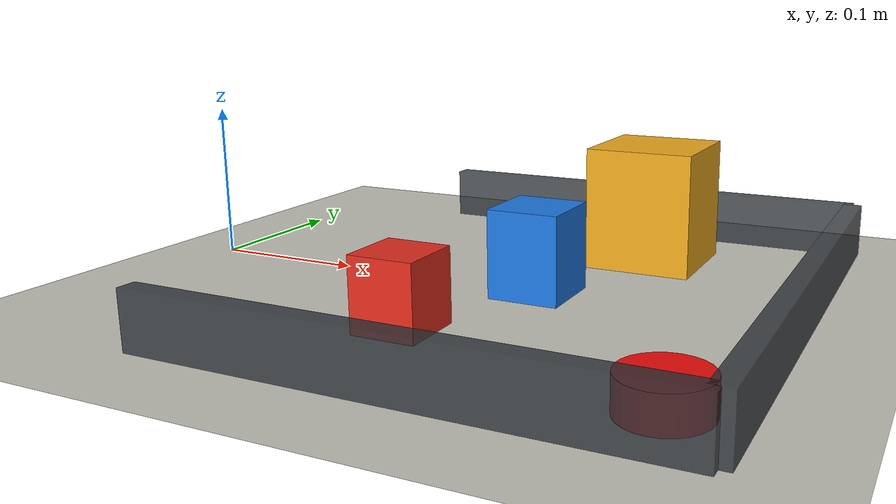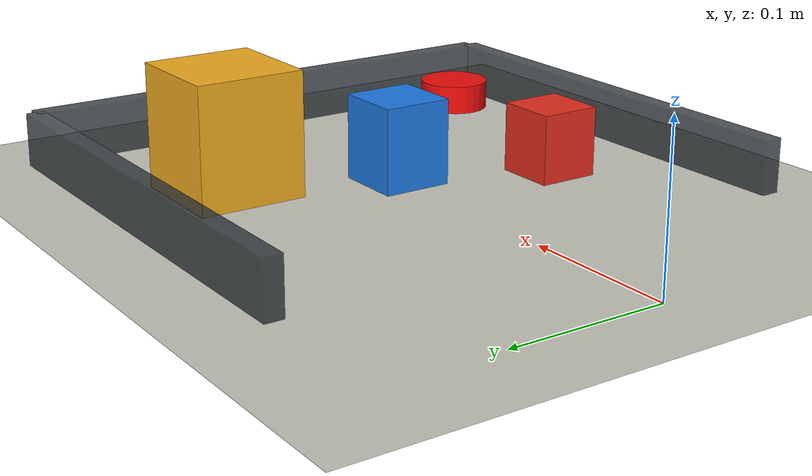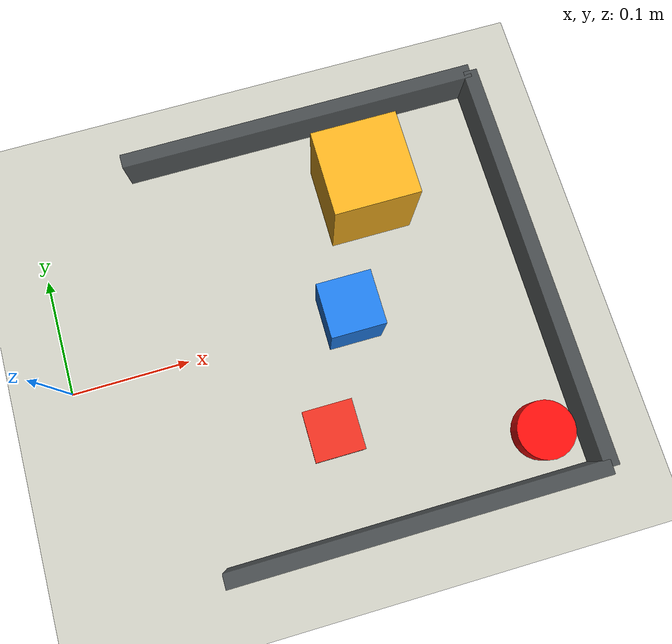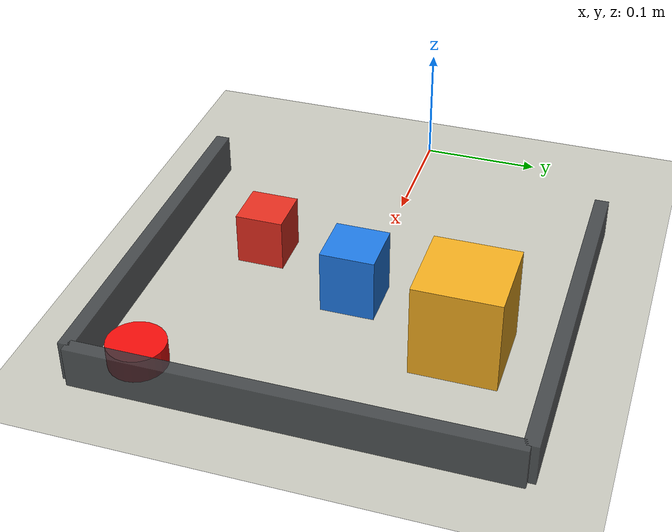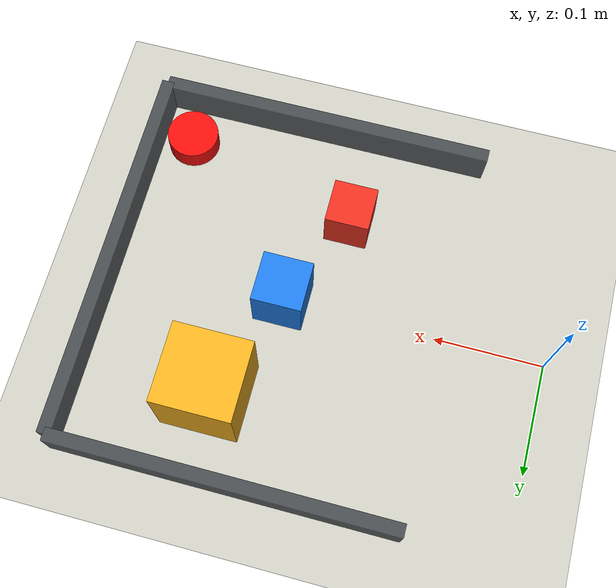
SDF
<?xml version="1.0" ?>
<sdf version="1.10">
  <world name="omx_grasp_lab">
    <physics name="1ms" type="ignored">
      <max_step_size>0.002</max_step_size>
      <real_time_factor>1.0</real_time_factor>
    </physics>

    <plugin filename="gz-sim-physics-system" name="gz::sim::systems::Physics"/>
    <plugin filename="gz-sim-user-commands-system" name="gz::sim::systems::UserCommands"/>
    <plugin filename="gz-sim-scene-broadcaster-system" name="gz::sim::systems::SceneBroadcaster"/>
    <plugin filename="gz-sim-contact-system" name="gz::sim::systems::Contact"/>

    <scene>
      <ambient>0.46 0.46 0.46 1</ambient>
      <background>0.70 0.78 0.86 1</background>
      <grid>true</grid>
    </scene>

    <gui fullscreen="0">
      <plugin name="3D View" filename="GzScene3D">
        <gz-gui>
          <title>3D View</title>
          <property type="bool" key="showTitleBar">0</property>
          <property type="string" key="state">docked</property>
        </gz-gui>
        <engine>ogre2</engine>
        <scene>scene</scene>
        <ambient_light>0.46 0.46 0.46</ambient_light>
        <background_color>0.70 0.78 0.86</background_color>
        <camera_pose>-0.42 -0.50 0.38 0 0.56 0.78</camera_pose>
      </plugin>
    </gui>

    <light name="sun" type="directional">
      <cast_shadows>true</cast_shadows>
      <pose>0 0 3 0 0 0</pose>
      <diffuse>0.85 0.85 0.85 1</diffuse>
      <specular>0.2 0.2 0.2 1</specular>
      <direction>-0.4 0.2 -1</direction>
    </light>

    <model name="ground_plane">
      <static>true</static>
      <link name="link">
        <collision name="collision">
          <geometry><plane><normal>0 0 1</normal><size>2 2</size></plane></geometry>
        </collision>
        <visual name="visual">
          <geometry><plane><normal>0 0 1</normal><size>2 2</size></plane></geometry>
          <material><diffuse>0.78 0.78 0.74 1</diffuse></material>
        </visual>
      </link>
    </model>

    <model name="workspace_tray">
      <static>true</static>
      <pose>0 0 0 0 0 0</pose>
      <link name="link">
        <collision name="back_wall_collision">
          <pose>0.245 0.175 0.0175 0 0 0</pose>
          <geometry><box><size>0.310 0.012 0.035</size></box></geometry>
        </collision>
        <visual name="back_wall_visual">
          <pose>0.245 0.175 0.0175 0 0 0</pose>
          <geometry><box><size>0.310 0.012 0.035</size></box></geometry>
          <material><diffuse>0.20 0.22 0.24 0.82</diffuse></material>
        </visual>
        <collision name="side_wall_collision">
          <pose>0.245 -0.175 0.0175 0 0 0</pose>
          <geometry><box><size>0.310 0.012 0.035</size></box></geometry>
        </collision>
        <visual name="side_wall_visual">
          <pose>0.245 -0.175 0.0175 0 0 0</pose>
          <geometry><box><size>0.310 0.012 0.035</size></box></geometry>
          <material><diffuse>0.20 0.22 0.24 0.82</diffuse></material>
        </visual>
        <collision name="right_wall_collision">
          <pose>0.400 0 0.0175 0 0 0</pose>
          <geometry><box><size>0.012 0.350 0.035</size></box></geometry>
        </collision>
        <visual name="right_wall_visual">
          <pose>0.400 0 0.0175 0 0 0</pose>
          <geometry><box><size>0.012 0.350 0.035</size></box></geometry>
          <material><diffuse>0.20 0.22 0.24 0.82</diffuse></material>
        </visual>
      </link>
    </model>

    <model name="reset_button_marker">
      <static>true</static>
      <pose>0.365 -0.135 0.010 0 0 0</pose>
      <link name="link">
        <visual name="visual">
          <geometry><cylinder><radius>0.024</radius><length>0.020</length></cylinder></geometry>
          <material><diffuse>0.95 0.05 0.04 1</diffuse></material>
        </visual>
      </link>
    </model>

    <model name="grasp_small">
      <static>false</static>
      <pose>0.20 -0.09 0.0225 0 0 0</pose>
      <link name="link">
        <inertial><mass>0.025</mass><inertia><ixx>0.00001</ixx><iyy>0.00001</iyy><izz>0.00001</izz></inertia></inertial>
        <collision name="collision">
          <geometry><box><size>0.040 0.040 0.045</size></box></geometry>
          <surface><friction><ode><mu>1.8</mu><mu2>1.8</mu2></ode></friction></surface>
        </collision>
        <visual name="visual">
          <geometry><box><size>0.040 0.040 0.045</size></box></geometry>
          <material><diffuse>0.9 0.18 0.12 1</diffuse></material>
        </visual>
      </link>
    </model>

    <model name="grasp_medium">
      <static>false</static>
      <pose>0.24 0.00 0.0275 0 0 0</pose>
      <link name="link">
        <inertial><mass>0.040</mass><inertia><ixx>0.00002</ixx><iyy>0.00002</iyy><izz>0.00002</izz></inertia></inertial>
        <collision name="collision">
          <geometry><box><size>0.045 0.045 0.055</size></box></geometry>
          <surface><friction><ode><mu>1.8</mu><mu2>1.8</mu2></ode></friction></surface>
        </collision>
        <visual name="visual">
          <geometry><box><size>0.045 0.045 0.055</size></box></geometry>
          <material><diffuse>0.12 0.48 0.90 1</diffuse></material>
        </visual>
      </link>
    </model>

    <model name="grasp_large">
      <static>false</static>
      <pose>0.28 0.10 0.040 0 0 0</pose>
      <link name="link">
        <inertial><mass>0.060</mass><inertia><ixx>0.00004</ixx><iyy>0.00004</iyy><izz>0.00004</izz></inertia></inertial>
        <collision name="collision">
          <geometry><box><size>0.070 0.070 0.080</size></box></geometry>
          <surface><friction><ode><mu>1.8</mu><mu2>1.8</mu2></ode></friction></surface>
        </collision>
        <visual name="visual">
          <geometry><box><size>0.070 0.070 0.080</size></box></geometry>
          <material><diffuse>0.95 0.68 0.12 1</diffuse></material>
        </visual>
      </link>
    </model>
  </world>
</sdf>
